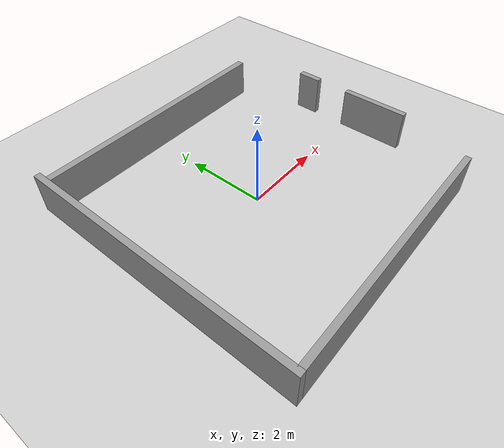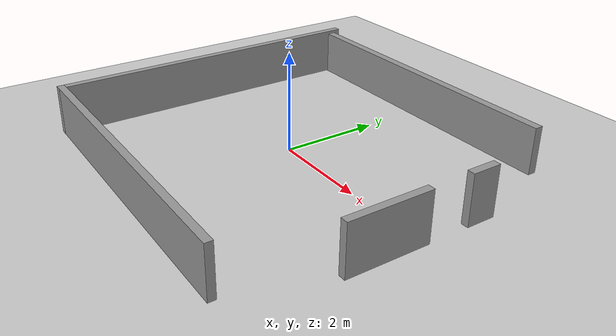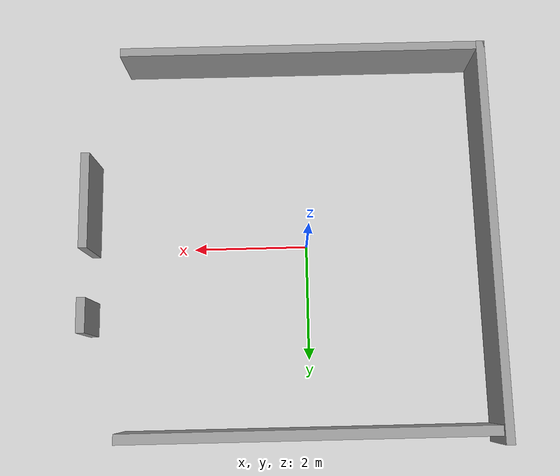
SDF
<sdf version="1.6">
 <world name="default">
  <light name="sun" type="directional">
   <pose>0 0 10 0 -0 0</pose>
   <diffuse>0.8 0.8 0.8 1</diffuse>
   <specular>0.1 0.1 0.1 1</specular>
   <attenuation>
    <range>1000</range>
    <constant>0.9</constant>
    <linear>0.01</linear>
    <quadratic>0.001</quadratic>
   </attenuation>
   <direction>-0.5 0.5 -1</direction>
  </light>
  <model name="ground_plane">
   <static>1</static>
   <link name="link">
    <collision name="collision">
     <geometry><plane><normal>0 0 1</normal><size>100 100</size></plane></geometry>
     <surface><friction><ode><mu>100</mu><mu2>50</mu2></ode></friction></surface>
    </collision>
    <visual name="visual">
     <cast_shadows>0</cast_shadows>
     <geometry><plane><normal>0 0 1</normal><size>100 100</size></plane></geometry>
     <material>
      <script><uri>file://media/materials/scripts/gazebo.material</uri><name>Gazebo/Grey</name></script>
     </material>
    </visual>
   </link>
  </model>
  <gravity>0 0 -9.8</gravity>
  <magnetic_field>6e-06 2.3e-05 -4.2e-05</magnetic_field>
  <atmosphere type="adiabatic"/>
  <physics name="default_physics" default="0" type="ode">
   <max_step_size>0.001</max_step_size>
   <real_time_factor>1</real_time_factor>
   <real_time_update_rate>1000</real_time_update_rate>
  </physics>
  <scene><ambient>0.4 0.4 0.4 1</ambient><background>0.7 0.7 0.7 1</background><shadows>1</shadows></scene>
  <spherical_coordinates>
   <surface_model>EARTH_WGS84</surface_model>
   <latitude_deg>0</latitude_deg>
   <longitude_deg>0</longitude_deg>
   <elevation>0</elevation>
   <heading_deg>0</heading_deg>
  </spherical_coordinates>
  <model name="aulagazebo_planta_0">
   <link name="Wall_22">
    <pose>0 -3.37462 0 0 -0 0</pose>
    <inertial>
     <inertia><ixx>nan</ixx><ixy>0</ixy><ixz>0</ixz><iyy>nan</iyy><iyz>0</iyz><izz>nan</izz></inertia>
     <mass>0</mass>
    </inertial>
    <visual name="Wall_22_Visual">
     <pose>0 0 0.5 0 -0 0</pose>
     <geometry><box><size>6.40564 0.15 1</size></box></geometry>
     <material>
      <script><uri>file://media/materials/scripts/gazebo.material</uri><name>Gazebo/Grey</name></script>
      <ambient>1 1 1 1</ambient>
      <diffuse>0.7 0.7 0.7 1</diffuse>
      <specular>0.01 0.01 0.01 1</specular>
      <emissive>0 0 0 1</emissive>
     </material>
    </visual>
    <collision name="Wall_22_Collision">
     <pose>0 0 0.5 0 -0 0</pose>
     <geometry><box><size>6.40564 0.15 1</size></box></geometry>
     <surface>
      <friction>
       <ode><mu>1</mu><mu2>1</mu2><fdir1>0 0 0</fdir1><slip1>0</slip1><slip2>0</slip2></ode>
       <torsional>
        <coefficient>1</coefficient>
        <patch_radius>0</patch_radius>
        <surface_radius>0</surface_radius>
        <use_patch_radius>1</use_patch_radius>
        <ode><slip>0</slip></ode>
       </torsional>
      </friction>
      <bounce><restitution_coefficient>0</restitution_coefficient><threshold>1e+06</threshold></bounce>
      <contact>
       <collide_without_contact>0</collide_without_contact>
       <collide_without_contact_bitmask>1</collide_without_contact_bitmask>
       <collide_bitmask>1</collide_bitmask>
       <ode>
        <soft_cfm>0</soft_cfm>
        <soft_erp>0.2</soft_erp>
        <kp>1e+13</kp>
        <kd>1</kd>
        <max_vel>0.01</max_vel>
        <min_depth>0</min_depth>
       </ode>
       <bullet>
        <split_impulse>1</split_impulse>
        <split_impulse_penetration_threshold>-0.01</split_impulse_penetration_threshold>
        <soft_cfm>0</soft_cfm>
        <soft_erp>0.2</soft_erp>
        <kp>1e+13</kp>
        <kd>1</kd>
       </bullet>
      </contact>
     </surface>
    </collision>
   </link>
   <link name="Wall_23">
    <pose>3.76115 9e-06 0 0 -0 1.5708</pose>
    <inertial>
     <inertia><ixx>nan</ixx><ixy>0</ixy><ixz>0</ixz><iyy>nan</iyy><iyz>0</iyz><izz>nan</izz></inertia>
     <mass>0</mass>
    </inertial>
    <visual name="Wall_23_Visual_0">
     <pose>-0.724238 0 0.5 0 -0 0</pose>
     <geometry><box><size>1.65541 0.15 1</size></box></geometry>
     <material>
      <script><uri>file://media/materials/scripts/gazebo.material</uri><name>Gazebo/Grey</name></script>
      <ambient>1 1 1 1</ambient>
      <diffuse>0.7 0.7 0.7 1</diffuse>
      <specular>0.01 0.01 0.01 1</specular>
      <emissive>0 0 0 1</emissive>
     </material>
    </visual>
    <visual name="Wall_23_Visual_1">
     <pose>1.22576 0 0.5 0 -0 0</pose>
     <geometry><box><size>0.585201 0.15 1</size></box></geometry>
     <material>
      <script><uri>file://media/materials/scripts/gazebo.material</uri><name>Gazebo/Grey</name></script>
      <ambient>1 1 1 1</ambient>
      <diffuse>0.7 0.7 0.7 1</diffuse>
      <specular>0.01 0.01 0.01 1</specular>
      <emissive>0 0 0 1</emissive>
     </material>
    </visual>
    <collision name="Wall_23_Collision_0">
     <pose>-0.724238 0 0.5 0 -0 0</pose>
     <geometry><box><size>1.65541 0.15 1</size></box></geometry>
     <surface>
      <friction>
       <ode><mu>1</mu><mu2>1</mu2><fdir1>0 0 0</fdir1><slip1>0</slip1><slip2>0</slip2></ode>
       <torsional>
        <coefficient>1</coefficient>
        <patch_radius>0</patch_radius>
        <surface_radius>0</surface_radius>
        <use_patch_radius>1</use_patch_radius>
        <ode><slip>0</slip></ode>
       </torsional>
      </friction>
      <bounce><restitution_coefficient>0</restitution_coefficient><threshold>1e+06</threshold></bounce>
      <contact>
       <collide_without_contact>0</collide_without_contact>
       <collide_without_contact_bitmask>1</collide_without_contact_bitmask>
       <collide_bitmask>1</collide_bitmask>
       <ode>
        <soft_cfm>0</soft_cfm>
        <soft_erp>0.2</soft_erp>
        <kp>1e+13</kp>
        <kd>1</kd>
        <max_vel>0.01</max_vel>
        <min_depth>0</min_depth>
       </ode>
       <bullet>
        <split_impulse>1</split_impulse>
        <split_impulse_penetration_threshold>-0.01</split_impulse_penetration_threshold>
        <soft_cfm>0</soft_cfm>
        <soft_erp>0.2</soft_erp>
        <kp>1e+13</kp>
        <kd>1</kd>
       </bullet>
      </contact>
     </surface>
    </collision>
    <collision name="Wall_23_Collision_1">
     <pose>1.22576 0 0.5 0 -0 0</pose>
     <geometry><box><size>0.585201 0.15 1</size></box></geometry>
     <surface>
      <friction>
       <ode><mu>1</mu><mu2>1</mu2><fdir1>0 0 0</fdir1><slip1>0</slip1><slip2>0</slip2></ode>
       <torsional>
        <coefficient>1</coefficient>
        <patch_radius>0</patch_radius>
        <surface_radius>0</surface_radius>
        <use_patch_radius>1</use_patch_radius>
        <ode><slip>0</slip></ode>
       </torsional>
      </friction>
      <bounce><restitution_coefficient>0</restitution_coefficient><threshold>1e+06</threshold></bounce>
      <contact>
       <collide_without_contact>0</collide_without_contact>
       <collide_without_contact_bitmask>1</collide_without_contact_bitmask>
       <collide_bitmask>1</collide_bitmask>
       <ode>
        <soft_cfm>0</soft_cfm>
        <soft_erp>0.2</soft_erp>
        <kp>1e+13</kp>
        <kd>1</kd>
        <max_vel>0.01</max_vel>
        <min_depth>0</min_depth>
       </ode>
       <bullet>
        <split_impulse>1</split_impulse>
        <split_impulse_penetration_threshold>-0.01</split_impulse_penetration_threshold>
        <soft_cfm>0</soft_cfm>
        <soft_erp>0.2</soft_erp>
        <kp>1e+13</kp>
        <kd>1</kd>
       </bullet>
      </contact>
     </surface>
    </collision>
   </link>
   <link name="Wall_24">
    <pose>5e-06 3.22361 -0.062935 0 -0 3.14159</pose>
    <inertial>
     <inertia><ixx>nan</ixx><ixy>0</ixy><ixz>0</ixz><iyy>nan</iyy><iyz>0</iyz><izz>nan</izz></inertia>
     <mass>0</mass>
    </inertial>
    <visual name="Wall_24_Visual">
     <pose>0 0 0.5 0 -0 0</pose>
     <geometry><box><size>6.40449 0.172298 1</size></box></geometry>
     <material>
      <script><uri>file://media/materials/scripts/gazebo.material</uri><name>Gazebo/Grey</name></script>
      <ambient>1 1 1 1</ambient>
      <diffuse>0.7 0.7 0.7 1</diffuse>
      <specular>0.01 0.01 0.01 1</specular>
      <emissive>0 0 0 1</emissive>
     </material>
    </visual>
    <collision name="Wall_24_Collision">
     <pose>0 0 0.5 0 -0 0</pose>
     <geometry><box><size>6.40449 0.172298 1</size></box></geometry>
     <surface>
      <friction>
       <ode><mu>1</mu><mu2>1</mu2><fdir1>0 0 0</fdir1><slip1>0</slip1><slip2>0</slip2></ode>
       <torsional>
        <coefficient>1</coefficient>
        <patch_radius>0</patch_radius>
        <surface_radius>0</surface_radius>
        <use_patch_radius>1</use_patch_radius>
        <ode><slip>0</slip></ode>
       </torsional>
      </friction>
      <bounce><restitution_coefficient>0</restitution_coefficient><threshold>1e+06</threshold></bounce>
      <contact>
       <collide_without_contact>0</collide_without_contact>
       <collide_without_contact_bitmask>1</collide_without_contact_bitmask>
       <collide_bitmask>1</collide_bitmask>
       <ode>
        <soft_cfm>0</soft_cfm>
        <soft_erp>0.2</soft_erp>
        <kp>1e+13</kp>
        <kd>1</kd>
        <max_vel>0.01</max_vel>
        <min_depth>0</min_depth>
       </ode>
       <bullet>
        <split_impulse>1</split_impulse>
        <split_impulse_penetration_threshold>-0.01</split_impulse_penetration_threshold>
        <soft_cfm>0</soft_cfm>
        <soft_erp>0.2</soft_erp>
        <kp>1e+13</kp>
        <kd>1</kd>
       </bullet>
      </contact>
     </surface>
    </collision>
   </link>
   <link name="Wall_25">
    <pose>-3.13384 -0.000549 0 0 0 -1.5708</pose>
    <inertial>
     <inertia><ixx>nan</ixx><ixy>0</ixy><ixz>0</ixz><iyy>nan</iyy><iyz>0</iyz><izz>nan</izz></inertia>
     <mass>0</mass>
    </inertial>
    <visual name="Wall_25_Visual">
     <pose>0 0 0.5 0 -0 0</pose>
     <geometry><box><size>6.89923 0.15 1</size></box></geometry>
     <material>
      <script><uri>file://media/materials/scripts/gazebo.material</uri><name>Gazebo/Grey</name></script>
      <ambient>1 1 1 1</ambient>
      <diffuse>0.7 0.7 0.7 1</diffuse>
      <specular>0.01 0.01 0.01 1</specular>
      <emissive>0 0 0 1</emissive>
     </material>
    </visual>
    <collision name="Wall_25_Collision">
     <pose>0 0 0.5 0 -0 0</pose>
     <geometry><box><size>6.89923 0.15 1</size></box></geometry>
     <surface>
      <friction>
       <ode><mu>1</mu><mu2>1</mu2><fdir1>0 0 0</fdir1><slip1>0</slip1><slip2>0</slip2></ode>
       <torsional>
        <coefficient>1</coefficient>
        <patch_radius>0</patch_radius>
        <surface_radius>0</surface_radius>
        <use_patch_radius>1</use_patch_radius>
        <ode><slip>0</slip></ode>
       </torsional>
      </friction>
      <bounce><restitution_coefficient>0</restitution_coefficient><threshold>1e+06</threshold></bounce>
      <contact>
       <collide_without_contact>0</collide_without_contact>
       <collide_without_contact_bitmask>1</collide_without_contact_bitmask>
       <collide_bitmask>1</collide_bitmask>
       <ode>
        <soft_cfm>0</soft_cfm>
        <soft_erp>0.2</soft_erp>
        <kp>1e+13</kp>
        <kd>1</kd>
        <max_vel>0.01</max_vel>
        <min_depth>0</min_depth>
       </ode>
       <bullet>
        <split_impulse>1</split_impulse>
        <split_impulse_penetration_threshold>-0.01</split_impulse_penetration_threshold>
        <soft_cfm>0</soft_cfm>
        <soft_erp>0.2</soft_erp>
        <kp>1e+13</kp>
        <kd>1</kd>
       </bullet>
      </contact>
     </surface>
    </collision>
   </link>
   <static>1</static>
  </model>
 </world>
</sdf>
